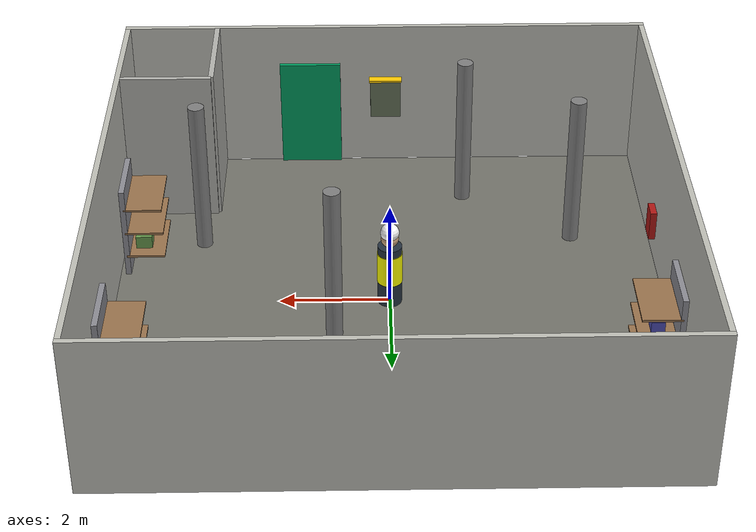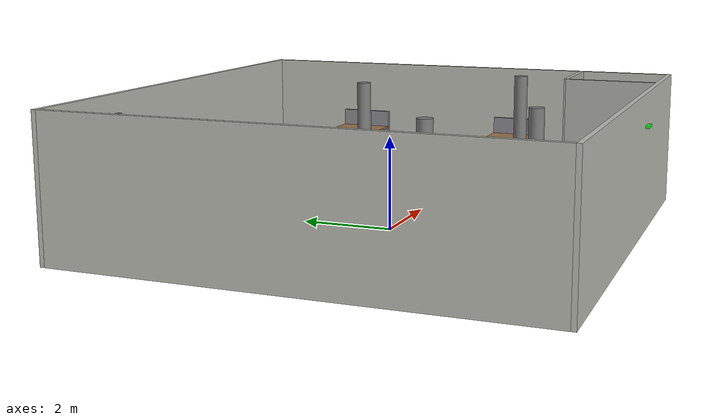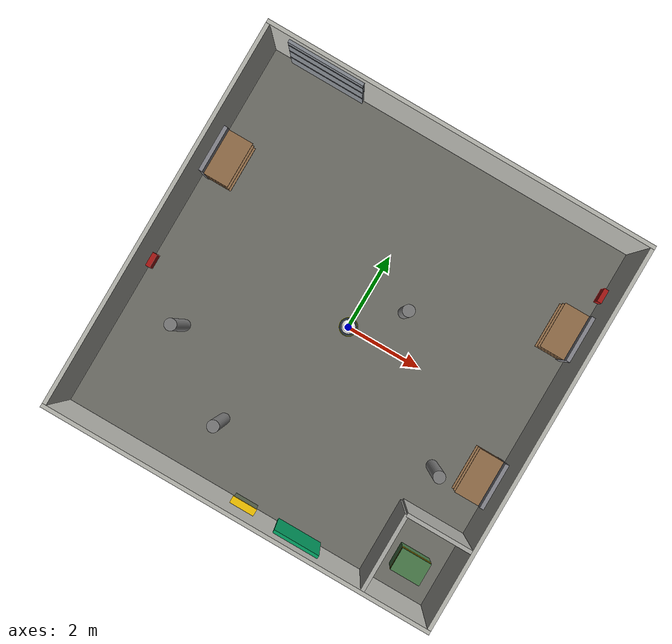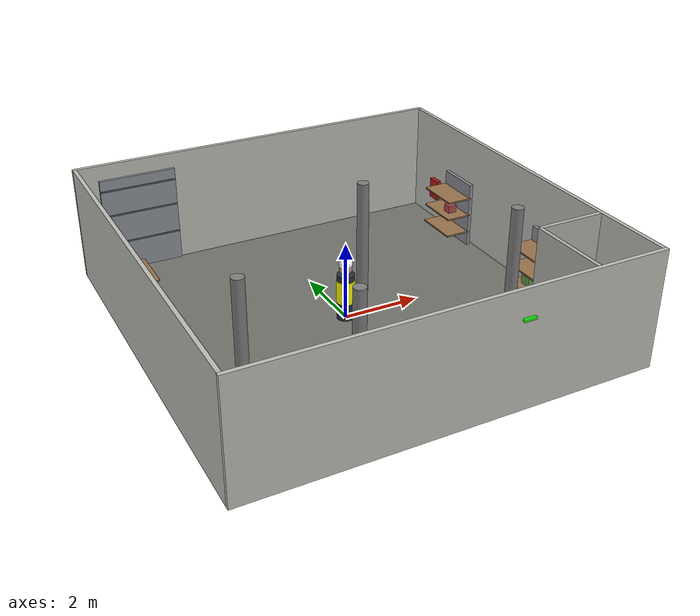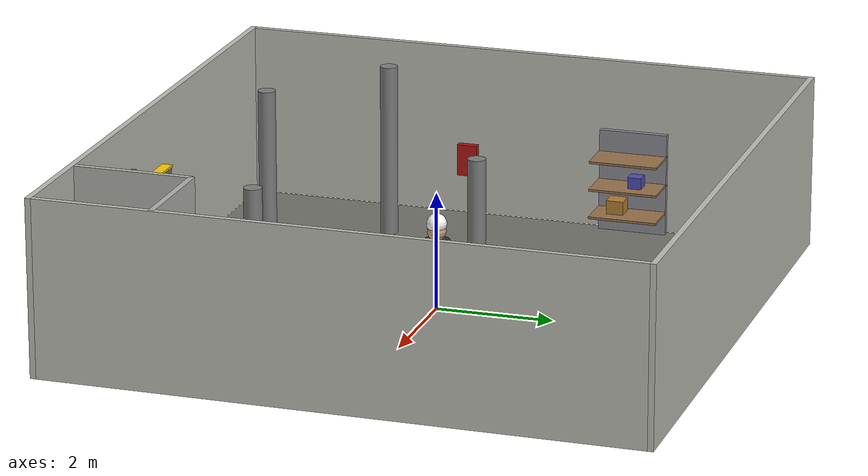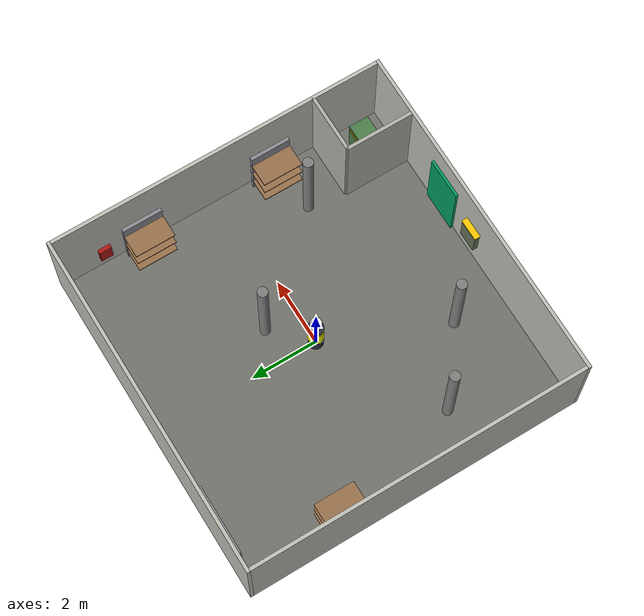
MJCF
<mujoco model="ppe_dataset_world">

    <compiler angle="radian"/>
    <option timestep="0.005"/>

    <worldbody>

        <camera
            name="dataset_camera"
            pos="0 -8 2.5"
            quat="0.5 0.5 -0.5 -0.5"
            fovy="58"/>

        <geom name="floor" type="plane" size="5 5 0.1" rgba="0.45 0.45 0.42 1" friction="1.0 0.005 0.0001"/>
        <light directional="true" diffuse=".8 .8 .8" specular=".3 .3 .3" pos="0 0 5" dir="0 0 -1"/>
        <!-- 보조 조명 -->
        <light directional="false" diffuse=".4 .4 .4" specular=".1 .1 .1" pos="3 3 3.5" dir="-0.3 -0.3 -1"/>
        <light directional="false" diffuse=".4 .4 .4" specular=".1 .1 .1" pos="-3 -3 3.5" dir="0.3 0.3 -1"/>

        <!-- 벽면 -->
        <geom name="wall_north" type="box" size="5.1 0.05 1.5" pos="0 5.05 1.5" rgba="0.75 0.75 0.72 1"/>
        <geom name="wall_south" type="box" size="5.1 0.05 1.5" pos="0 -5.05 1.5" rgba="0.75 0.75 0.72 1"/>
        <geom name="wall_east" type="box" size="0.05 5.0 1.5" pos="5.05 0 1.5" rgba="0.75 0.75 0.72 1"/>
        <geom name="wall_west" type="box" size="0.05 5.0 1.5" pos="-5.05 0 1.5" rgba="0.75 0.75 0.72 1"/>

        <!-- 기둥 -->
        <body name="column_1" pos="-1.5 -3.5 0">
            <geom name="column_1_geom" type="cylinder" size="0.15 1.5" pos="0 0 1.5" rgba="0.5 0.5 0.5 1" mass="80.0"/>
        </body>
        <body name="column_2" pos="1 1 0">
            <geom name="column_2_geom" type="cylinder" size="0.15 1.5" pos="0 0 1.5" rgba="0.5 0.5 0.5 1" mass="80.0"/>
        </body>
        <body name="column_3" pos="3.5 -1.9 0">
            <geom name="column_3_geom" type="cylinder" size="0.15 1.5" pos="0 0 1.5" rgba="0.5 0.5 0.5 1" mass="80.0"/>
        </body>
        <body name="column_4" pos="-3.5 -2 0">
            <geom name="column_4_geom" type="cylinder" size="0.15 1.5" pos="0 0 1.5" rgba="0.5 0.5 0.5 1" mass="80.0"/>
        </body>

        <!-- 서쪽 벽면 선반 -->
        <body name="wall_shelf_west" pos="-4.85 2.0 0">
            <geom name="shelf_west_back" type="box" size="0.05 0.6 0.9" pos="0 0 0.9" rgba="0.55 0.55 0.58 1" mass="8.0"/>
            <geom name="shelf_west_tier1" type="box" size="0.35 0.6 0.02" pos="0.35 0 0.4" rgba="0.6 0.45 0.3 1" mass="5.0"/>
            <geom name="shelf_west_tier2" type="box" size="0.35 0.6 0.02" pos="0.35 0 0.9" rgba="0.6 0.45 0.3 1" mass="5.0"/>
            <geom name="shelf_west_tier3" type="box" size="0.35 0.6 0.02" pos="0.35 0 1.4" rgba="0.6 0.45 0.3 1" mass="5.0"/>
            <geom name="shelf_west_item1" type="box" size="0.15 0.15 0.12" pos="0.3 -0.2 0.54" rgba="0.7 0.5 0.2 1" mass="3.0"/>
            <geom name="shelf_west_item2" type="box" size="0.12 0.12 0.1" pos="0.35 0.15 1.02" rgba="0.3 0.3 0.7 1" mass="2.0"/>
        </body>

        <!-- 동쪽 벽면 선반 1 -->
        <body name="wall_shelf_east_1" pos="4.85 -1.5 0">
            <geom name="shelf_east1_back" type="box" size="0.05 0.6 0.9" pos="0 0 0.9" rgba="0.55 0.55 0.58 1" mass="8.0"/>
            <geom name="shelf_east1_tier1" type="box" size="0.35 0.6 0.02" pos="-0.35 0 0.4" rgba="0.6 0.45 0.3 1" mass="5.0"/>
            <geom name="shelf_east1_tier2" type="box" size="0.35 0.6 0.02" pos="-0.35 0 0.9" rgba="0.6 0.45 0.3 1" mass="5.0"/>
            <geom name="shelf_east1_tier3" type="box" size="0.35 0.6 0.02" pos="-0.35 0 1.4" rgba="0.6 0.45 0.3 1" mass="5.0"/>
            <geom name="shelf_east1_item1" type="box" size="0.15 0.15 0.12" pos="-0.3 0.2 0.54" rgba="0.4 0.6 0.3 1" mass="3.0"/>
        </body>

        <!-- 동쪽 벽면 선반 2 -->
        <body name="wall_shelf_east_2" pos="4.85 2.5 0">
            <geom name="shelf_east2_back" type="box" size="0.05 0.6 0.9" pos="0 0 0.9" rgba="0.55 0.55 0.58 1" mass="8.0"/>
            <geom name="shelf_east2_tier1" type="box" size="0.35 0.6 0.02" pos="-0.35 0 0.4" rgba="0.6 0.45 0.3 1" mass="5.0"/>
            <geom name="shelf_east2_tier2" type="box" size="0.35 0.6 0.02" pos="-0.35 0 0.9" rgba="0.6 0.45 0.3 1" mass="5.0"/>
            <geom name="shelf_east2_tier3" type="box" size="0.35 0.6 0.02" pos="-0.35 0 1.4" rgba="0.6 0.45 0.3 1" mass="5.0"/>
            <geom name="shelf_east2_item1" type="box" size="0.12 0.12 0.1" pos="-0.35 -0.15 1.02" rgba="0.7 0.3 0.3 1" mass="2.0"/>
        </body>

        <!-- 벽면 전기 배전반 & 소화기함 (기본 인프라) -->
        <body name="electrical_panel" pos="0 -4.85 0">
            <geom name="panel_box" type="box" size="0.3 0.08 0.4" pos="0 0 1.5" rgba="0.4 0.45 0.35 1" mass="15.0"/>
            <geom name="panel_warning_stripe" type="box" size="0.32 0.09 0.02" pos="0 0 1.9" rgba="1 0.8 0 1" contype="0" conaffinity="0"/>
        </body>

        <body name="fire_extinguisher_1" pos="4.85 3.7 0">
            <geom name="extinguisher_cabinet_1" type="box" size="0.06 0.18 0.28" pos="0 0 1.0" rgba="0.69 0.09 0.08 1" mass="5.0"/>
        </body>
        <body name="fire_extinguisher_2" pos="-4.85 -1.0 0">
            <geom name="extinguisher_cabinet_2" type="box" size="0.06 0.18 0.28" pos="0 0 1.0" rgba="0.69 0.09 0.08 1" mass="5.0"/>
        </body>

        <!-- 북쪽 벽 하역장 셔터도어 -->
        <body name="loading_dock_door" pos="-3.5 5.0 0">
            <geom name="shutter_door" type="box" size="1.0 0.08 1.3" pos="0 0 1.3" rgba="0.55 0.57 0.6 1"/>
            <geom name="shutter_line_1" type="box" size="1.0 0.09 0.02" pos="0 0 0.8" rgba="0.35 0.37 0.4 1" contype="0" conaffinity="0"/>
            <geom name="shutter_line_2" type="box" size="1.0 0.09 0.02" pos="0 0 1.6" rgba="0.35 0.37 0.4 1" contype="0" conaffinity="0"/>
            <geom name="shutter_line_3" type="box" size="1.0 0.09 0.02" pos="0 0 2.3" rgba="0.35 0.37 0.4 1" contype="0" conaffinity="0"/>
        </body>

        <!-- 남쪽 벽 비상구 -->
        <body name="emergency_exit" pos="1.5 -5.0 0">
            <geom name="exit_door" type="box" size="0.6 0.08 1.1" pos="0 0 1.1" rgba="0.0 0.62 0.38 1"/>
            <site name="exit_sign" pos="0 -0.1 2.3" size="0.15 0.08 0.03" type="box" rgba="0 1 0 0.8"/>
        </body>

        <!-- 돌출 격벽 - 전기/설비실 (기본 인프라) -->
        <body name="utility_room_wall_1" pos="3.3 -4.0 0">
            <geom name="utility_wall_1_geom" type="box" size="0.05 1.0 1.5" pos="0 0 1.5" rgba="0.7 0.7 0.68 1"/>
        </body>
        <body name="utility_room_wall_2" pos="4.175 -3.0 0">
            <geom name="utility_wall_2_geom" type="box" size="0.875 0.05 1.5" pos="0 0 1.5" rgba="0.7 0.7 0.68 1"/>
        </body>
        <!-- 격벽 내부 변압기/설비 박스 -->
        <body name="utility_equipment" pos="4.2 -4.2 0">
            <geom name="transformer_box" type="box" size="0.4 0.3 0.5" pos="0 0 0.5" rgba="0.3 0.5 0.3 1" mass="150.0"/>
            <!-- 고전압 경고 표시 -->
            <geom name="transformer_warning" type="box" size="0.4 0.31 0.05" pos="0 0 0.85" rgba="1 0.8 0 1" contype="0" conaffinity="0"/>
        </body>

        <!-- Worker 0 -->

        <body
            name="worker_0"
            pos="0 0 0">

            <!-- body -->
            <geom
                name="worker_0_body"
                type="cylinder"
                size="0.22 0.6"
                pos="0 0 0.6"
                rgba="0.15 0.2 0.25 1"/>

            <!-- vest -->
            <geom
                name="worker_0_vest"
                type="cylinder"
                size="0.23 0.3"
                pos="0 0 0.75"
                rgba="1 1 0 1"/>

            <!-- head -->
            <geom
                name="worker_0_head"
                type="sphere"
                size="0.16"
                pos="0 0 1.35"
                rgba="0.8 0.65 0.5 1"/>

            <!-- helmet -->
            <geom
                name="worker_0_helmet"
                type="sphere"
                size="0.17"
                pos="0 0 1.48"
                rgba="1 1 1 1"/>

        </body>

        <!-- Worker 1 -->

        <body
            name="worker_1"
            pos="0 0 0">

            <geom
                name="worker_1_body"
                type="cylinder"
                size="0.22 0.6"
                pos="0 0 0.6"
                rgba="0.2 0.25 0.3 1"/>

            <geom
                name="worker_1_vest"
                type="cylinder"
                size="0.23 0.3"
                pos="0 0 0.75"
                rgba="1 1 0 1"/>

            <geom
                name="worker_1_head"
                type="sphere"
                size="0.16"
                pos="0 0 1.35"
                rgba="0.8 0.65 0.5 1"/>

            <geom
                name="worker_1_helmet"
                type="sphere"
                size="0.17"
                pos="0 0 1.48"
                rgba="1 1 1 1"/>

        </body>

        <!-- Worker 2 -->

        <body
            name="worker_2"
            pos="0 0 0">

            <geom
                name="worker_2_body"
                type="cylinder"
                size="0.22 0.6"
                pos="0 0 0.6"
                rgba="0.15 0.18 0.22 1"/>

            <geom
                name="worker_2_vest"
                type="cylinder"
                size="0.23 0.3"
                pos="0 0 0.75"
                rgba="1 1 0 1"/>

            <geom
                name="worker_2_head"
                type="sphere"
                size="0.16"
                pos="0 0 1.35"
                rgba="0.8 0.65 0.5 1"/>

            <geom
                name="worker_2_helmet"
                type="sphere"
                size="0.17"
                pos="0 0 1.48"
                rgba="1 1 1 1"/>

        </body>

        <!-- Worker 3 -->

        <body
            name="worker_3"
            pos="0 0 0">

            <geom
                name="worker_3_body"
                type="cylinder"
                size="0.22 0.6"
                pos="0 0 0.6"
                rgba="0.25 0.28 0.32 1"/>

            <geom
                name="worker_3_vest"
                type="cylinder"
                size="0.23 0.3"
                pos="0 0 0.75"
                rgba="1 1 0 1"/>

            <geom
                name="worker_3_head"
                type="sphere"
                size="0.16"
                pos="0 0 1.35"
                rgba="0.8 0.65 0.5 1"/>

            <geom
                name="worker_3_helmet"
                type="sphere"
                size="0.17"
                pos="0 0 1.48"
                rgba="1 1 1 1"/>

        </body>

        <!-- Worker 4 -->

        <body
            name="worker_4"
            pos="0 0 0">

            <geom
                name="worker_4_body"
                type="cylinder"
                size="0.22 0.6"
                pos="0 0 0.6"
                rgba="0.18 0.2 0.25 1"/>

            <geom
                name="worker_4_vest"
                type="cylinder"
                size="0.23 0.3"
                pos="0 0 0.75"
                rgba="1 1 0 1"/>

            <geom
                name="worker_4_head"
                type="sphere"
                size="0.16"
                pos="0 0 1.35"
                rgba="0.8 0.65 0.5 1"/>

            <geom
                name="worker_4_helmet"
                type="sphere"
                size="0.17"
                pos="0 0 1.48"
                rgba="1 1 1 1"/>

        </body>
    </worldbody>
</mujoco>
